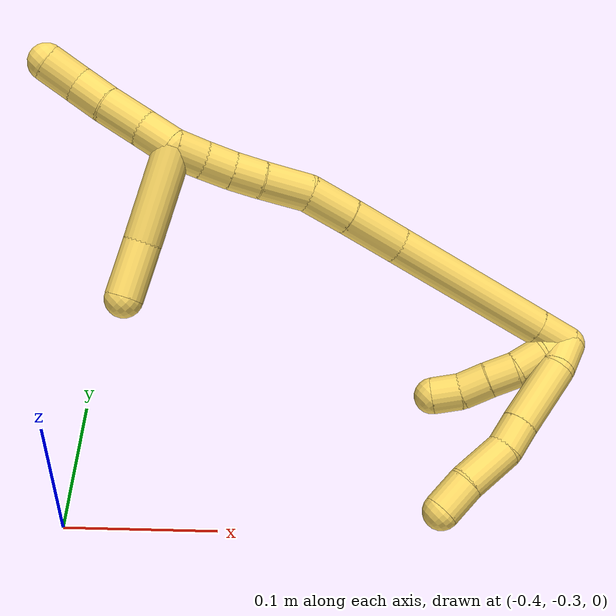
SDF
<sdf version="1.7">
 <world name="default">
  <model name="5">
   <static>0</static>
   <link name="5">
    <collision name="collision-cylinder-e_1_2_8">
     <pose>0.002213 -0.006853 -0.008805 2.48023 0.195799 0.55731</pose>
     <geometry><cylinder><radius>0.0125</radius><length>0.022749</length></cylinder></geometry>
     <surface>
      <friction><ode><mu>1.16</mu><mu2>1.16</mu2><slip1>0</slip1><slip2>0</slip2></ode></friction>
      <contact><ode><kp>1e+06</kp><kd>1</kd><max_vel>0</max_vel><min_depth>0.001</min_depth></ode></contact>
     </surface>
    </collision>
    <visual name="visual-cylinder-e_1_2_8">
     <pose>0.002213 -0.006853 -0.008805 2.48023 0.195799 0.55731</pose>
     <geometry><cylinder><radius>0.0125</radius><length>0.022749</length></cylinder></geometry>
     <material><ambient>1 0.858824 0.4 1</ambient></material>
    </visual>
    <collision name="collision-cylinder-e_2_8_9">
     <pose>0.007707 -0.021106 -0.03972 2.8186 0.139783 0.8117</pose>
     <geometry><cylinder><radius>0.0125</radius><length>0.047092</length></cylinder></geometry>
     <surface>
      <friction><ode><mu>1.16</mu><mu2>1.16</mu2><slip1>0</slip1><slip2>0</slip2></ode></friction>
      <contact><ode><kp>1e+06</kp><kd>1</kd><max_vel>0</max_vel><min_depth>0.001</min_depth></ode></contact>
     </surface>
    </collision>
    <visual name="visual-cylinder-e_2_8_9">
     <pose>0.007707 -0.021106 -0.03972 2.8186 0.139783 0.8117</pose>
     <geometry><cylinder><radius>0.0125</radius><length>0.047092</length></cylinder></geometry>
     <material><ambient>1 0.858824 0.4 1</ambient></material>
    </visual>
    <collision name="collision-cylinder-e_3_9_10">
     <pose>0.012807 -0.031918 -0.071524 2.80321 0.175273 0.950112</pose>
     <geometry><cylinder><radius>0.0125</radius><length>0.020871</length></cylinder></geometry>
     <surface>
      <friction><ode><mu>1.16</mu><mu2>1.16</mu2><slip1>0</slip1><slip2>0</slip2></ode></friction>
      <contact><ode><kp>1e+06</kp><kd>1</kd><max_vel>0</max_vel><min_depth>0.001</min_depth></ode></contact>
     </surface>
    </collision>
    <visual name="visual-cylinder-e_3_9_10">
     <pose>0.012807 -0.031918 -0.071524 2.80321 0.175273 0.950112</pose>
     <geometry><cylinder><radius>0.0125</radius><length>0.020871</length></cylinder></geometry>
     <material><ambient>1 0.858824 0.4 1</ambient></material>
    </visual>
    <collision name="collision-cylinder-e_4_10_11">
     <pose>0.012732 -0.040397 -0.097722 2.84366 -0.109274 -0.698923</pose>
     <geometry><cylinder><radius>0.0125</radius><length>0.034739</length></cylinder></geometry>
     <surface>
      <friction><ode><mu>1.16</mu><mu2>1.16</mu2><slip1>0</slip1><slip2>0</slip2></ode></friction>
      <contact><ode><kp>1e+06</kp><kd>1</kd><max_vel>0</max_vel><min_depth>0.001</min_depth></ode></contact>
     </surface>
    </collision>
    <visual name="visual-cylinder-e_4_10_11">
     <pose>0.012732 -0.040397 -0.097722 2.84366 -0.109274 -0.698923</pose>
     <geometry><cylinder><radius>0.0125</radius><length>0.034739</length></cylinder></geometry>
     <material><ambient>1 0.858824 0.4 1</ambient></material>
    </visual>
    <collision name="collision-cylinder-e_5_11_6">
     <pose>0.011175 -0.04816 -0.126198 2.92024 0.027427 0.245572</pose>
     <geometry><cylinder><radius>0.0125</radius><length>0.024549</length></cylinder></geometry>
     <surface>
      <friction><ode><mu>1.16</mu><mu2>1.16</mu2><slip1>0</slip1><slip2>0</slip2></ode></friction>
      <contact><ode><kp>1e+06</kp><kd>1</kd><max_vel>0</max_vel><min_depth>0.001</min_depth></ode></contact>
     </surface>
    </collision>
    <visual name="visual-cylinder-e_5_11_6">
     <pose>0.011175 -0.04816 -0.126198 2.92024 0.027427 0.245572</pose>
     <geometry><cylinder><radius>0.0125</radius><length>0.024549</length></cylinder></geometry>
     <material><ambient>1 0.858824 0.4 1</ambient></material>
    </visual>
    <collision name="collision-cylinder-e_1_2_12">
     <pose>-0.003931 -0.002653 -0.008804 2.84896 -0.403952 -1.89396</pose>
     <geometry><cylinder><radius>0.0125</radius><length>0.02</length></cylinder></geometry>
     <surface>
      <friction><ode><mu>1.16</mu><mu2>1.16</mu2><slip1>0</slip1><slip2>0</slip2></ode></friction>
      <contact><ode><kp>1e+06</kp><kd>1</kd><max_vel>0</max_vel><min_depth>0.001</min_depth></ode></contact>
     </surface>
    </collision>
    <visual name="visual-cylinder-e_1_2_12">
     <pose>-0.003931 -0.002653 -0.008804 2.84896 -0.403952 -1.89396</pose>
     <geometry><cylinder><radius>0.0125</radius><length>0.02</length></cylinder></geometry>
     <material><ambient>1 0.858824 0.4 1</ambient></material>
    </visual>
    <collision name="collision-cylinder-e_2_12_13">
     <pose>-0.010307 -0.006215 -0.027262 3.0476 -0.247058 -2.41745</pose>
     <geometry><cylinder><radius>0.0125</radius><length>0.02</length></cylinder></geometry>
     <surface>
      <friction><ode><mu>1.16</mu><mu2>1.16</mu2><slip1>0</slip1><slip2>0</slip2></ode></friction>
      <contact><ode><kp>1e+06</kp><kd>1</kd><max_vel>0</max_vel><min_depth>0.001</min_depth></ode></contact>
     </surface>
    </collision>
    <visual name="visual-cylinder-e_2_12_13">
     <pose>-0.010307 -0.006215 -0.027262 3.0476 -0.247058 -2.41745</pose>
     <geometry><cylinder><radius>0.0125</radius><length>0.02</length></cylinder></geometry>
     <material><ambient>1 0.858824 0.4 1</ambient></material>
    </visual>
    <collision name="collision-cylinder-e_3_13_14">
     <pose>-0.016679 -0.006003 -0.046044 -3.0193 -0.403552 2.55997</pose>
     <geometry><cylinder><radius>0.0125</radius><length>0.02</length></cylinder></geometry>
     <surface>
      <friction><ode><mu>1.16</mu><mu2>1.16</mu2><slip1>0</slip1><slip2>0</slip2></ode></friction>
      <contact><ode><kp>1e+06</kp><kd>1</kd><max_vel>0</max_vel><min_depth>0.001</min_depth></ode></contact>
     </surface>
    </collision>
    <visual name="visual-cylinder-e_3_13_14">
     <pose>-0.016679 -0.006003 -0.046044 -3.0193 -0.403552 2.55997</pose>
     <geometry><cylinder><radius>0.0125</radius><length>0.02</length></cylinder></geometry>
     <material><ambient>1 0.858824 0.4 1</ambient></material>
    </visual>
    <collision name="collision-cylinder-e_4_14_15">
     <pose>-0.024023 -0.003277 -0.064432 -2.97006 -0.348737 2.23348</pose>
     <geometry><cylinder><radius>0.0125</radius><length>0.02</length></cylinder></geometry>
     <surface>
      <friction><ode><mu>1.16</mu><mu2>1.16</mu2><slip1>0</slip1><slip2>0</slip2></ode></friction>
      <contact><ode><kp>1e+06</kp><kd>1</kd><max_vel>0</max_vel><min_depth>0.001</min_depth></ode></contact>
     </surface>
    </collision>
    <visual name="visual-cylinder-e_4_14_15">
     <pose>-0.024023 -0.003277 -0.064432 -2.97006 -0.348737 2.23348</pose>
     <geometry><cylinder><radius>0.0125</radius><length>0.02</length></cylinder></geometry>
     <material><ambient>1 0.858824 0.4 1</ambient></material>
    </visual>
    <collision name="collision-cylinder-e_5_15_5">
     <pose>-0.033104 -0.000361 -0.081828 -2.9817 -0.602148 2.63658</pose>
     <geometry><cylinder><radius>0.0125</radius><length>0.02</length></cylinder></geometry>
     <surface>
      <friction><ode><mu>1.16</mu><mu2>1.16</mu2><slip1>0</slip1><slip2>0</slip2></ode></friction>
      <contact><ode><kp>1e+06</kp><kd>1</kd><max_vel>0</max_vel><min_depth>0.001</min_depth></ode></contact>
     </surface>
    </collision>
    <visual name="visual-cylinder-e_5_15_5">
     <pose>-0.033104 -0.000361 -0.081828 -2.9817 -0.602148 2.63658</pose>
     <geometry><cylinder><radius>0.0125</radius><length>0.02</length></cylinder></geometry>
     <material><ambient>1 0.858824 0.4 1</ambient></material>
    </visual>
    <collision name="collision-cylinder-e_1_2_16">
     <pose>-0.01201 -0.002202 -0.003387 2.56503 -1.24631 -2.35892</pose>
     <geometry><cylinder><radius>0.0125</radius><length>0.025343</length></cylinder></geometry>
     <surface>
      <friction><ode><mu>1.16</mu><mu2>1.16</mu2><slip1>0</slip1><slip2>0</slip2></ode></friction>
      <contact><ode><kp>1e+06</kp><kd>1</kd><max_vel>0</max_vel><min_depth>0.001</min_depth></ode></contact>
     </surface>
    </collision>
    <visual name="visual-cylinder-e_1_2_16">
     <pose>-0.01201 -0.002202 -0.003387 2.56503 -1.24631 -2.35892</pose>
     <geometry><cylinder><radius>0.0125</radius><length>0.025343</length></cylinder></geometry>
     <material><ambient>1 0.858824 0.4 1</ambient></material>
    </visual>
    <collision name="collision-cylinder-e_2_16_17">
     <pose>-0.076916 -0.014977 -0.021815 2.52893 -1.23628 -2.30457</pose>
     <geometry><cylinder><radius>0.0125</radius><length>0.112</length></cylinder></geometry>
     <surface>
      <friction><ode><mu>1.16</mu><mu2>1.16</mu2><slip1>0</slip1><slip2>0</slip2></ode></friction>
      <contact><ode><kp>1e+06</kp><kd>1</kd><max_vel>0</max_vel><min_depth>0.001</min_depth></ode></contact>
     </surface>
    </collision>
    <visual name="visual-cylinder-e_2_16_17">
     <pose>-0.076916 -0.014977 -0.021815 2.52893 -1.23628 -2.30457</pose>
     <geometry><cylinder><radius>0.0125</radius><length>0.112</length></cylinder></geometry>
     <material><ambient>1 0.858824 0.4 1</ambient></material>
    </visual>
    <collision name="collision-cylinder-e_3_17_18">
     <pose>-0.147775 -0.03058 -0.042055 2.3727 -1.18796 -2.06211</pose>
     <geometry><cylinder><radius>0.0125</radius><length>0.03873</length></cylinder></geometry>
     <surface>
      <friction><ode><mu>1.16</mu><mu2>1.16</mu2><slip1>0</slip1><slip2>0</slip2></ode></friction>
      <contact><ode><kp>1e+06</kp><kd>1</kd><max_vel>0</max_vel><min_depth>0.001</min_depth></ode></contact>
     </surface>
    </collision>
    <visual name="visual-cylinder-e_3_17_18">
     <pose>-0.147775 -0.03058 -0.042055 2.3727 -1.18796 -2.06211</pose>
     <geometry><cylinder><radius>0.0125</radius><length>0.03873</length></cylinder></geometry>
     <material><ambient>1 0.858824 0.4 1</ambient></material>
    </visual>
    <collision name="collision-cylinder-e_4_18_19">
     <pose>-0.180456 -0.039085 -0.05172 2.4803 -1.20372 -2.21474</pose>
     <geometry><cylinder><radius>0.0125</radius><length>0.031537</length></cylinder></geometry>
     <surface>
      <friction><ode><mu>1.16</mu><mu2>1.16</mu2><slip1>0</slip1><slip2>0</slip2></ode></friction>
      <contact><ode><kp>1e+06</kp><kd>1</kd><max_vel>0</max_vel><min_depth>0.001</min_depth></ode></contact>
     </surface>
    </collision>
    <visual name="visual-cylinder-e_4_18_19">
     <pose>-0.180456 -0.039085 -0.05172 2.4803 -1.20372 -2.21474</pose>
     <geometry><cylinder><radius>0.0125</radius><length>0.031537</length></cylinder></geometry>
     <material><ambient>1 0.858824 0.4 1</ambient></material>
    </visual>
    <collision name="collision-cylinder-e_5_19_20">
     <pose>-0.208263 -0.046663 -0.064078 2.66218 -0.973956 -2.27673</pose>
     <geometry><cylinder><radius>0.0125</radius><length>0.03165</length></cylinder></geometry>
     <surface>
      <friction><ode><mu>1.16</mu><mu2>1.16</mu2><slip1>0</slip1><slip2>0</slip2></ode></friction>
      <contact><ode><kp>1e+06</kp><kd>1</kd><max_vel>0</max_vel><min_depth>0.001</min_depth></ode></contact>
     </surface>
    </collision>
    <visual name="visual-cylinder-e_5_19_20">
     <pose>-0.208263 -0.046663 -0.064078 2.66218 -0.973956 -2.27673</pose>
     <geometry><cylinder><radius>0.0125</radius><length>0.03165</length></cylinder></geometry>
     <material><ambient>1 0.858824 0.4 1</ambient></material>
    </visual>
    <collision name="collision-cylinder-e_6_20_21">
     <pose>-0.230041 -0.052654 -0.076808 2.76948 -1.03201 -2.5008</pose>
     <geometry><cylinder><radius>0.0125</radius><length>0.020245</length></cylinder></geometry>
     <surface>
      <friction><ode><mu>1.16</mu><mu2>1.16</mu2><slip1>0</slip1><slip2>0</slip2></ode></friction>
      <contact><ode><kp>1e+06</kp><kd>1</kd><max_vel>0</max_vel><min_depth>0.001</min_depth></ode></contact>
     </surface>
    </collision>
    <visual name="visual-cylinder-e_6_20_21">
     <pose>-0.230041 -0.052654 -0.076808 2.76948 -1.03201 -2.5008</pose>
     <geometry><cylinder><radius>0.0125</radius><length>0.020245</length></cylinder></geometry>
     <material><ambient>1 0.858824 0.4 1</ambient></material>
    </visual>
    <collision name="collision-cylinder-e_7_21_22">
     <pose>-0.247517 -0.056761 -0.085873 2.65819 -1.0732 -2.3558</pose>
     <geometry><cylinder><radius>0.0125</radius><length>0.020002</length></cylinder></geometry>
     <surface>
      <friction><ode><mu>1.16</mu><mu2>1.16</mu2><slip1>0</slip1><slip2>0</slip2></ode></friction>
      <contact><ode><kp>1e+06</kp><kd>1</kd><max_vel>0</max_vel><min_depth>0.001</min_depth></ode></contact>
     </surface>
    </collision>
    <visual name="visual-cylinder-e_7_21_22">
     <pose>-0.247517 -0.056761 -0.085873 2.65819 -1.0732 -2.3558</pose>
     <geometry><cylinder><radius>0.0125</radius><length>0.020002</length></cylinder></geometry>
     <material><ambient>1 0.858824 0.4 1</ambient></material>
    </visual>
    <collision name="collision-cylinder-e_8_22_1">
     <pose>-0.265108 -0.062383 -0.094091 2.43559 -1.0334 -1.99104</pose>
     <geometry><cylinder><radius>0.0125</radius><length>0.020494</length></cylinder></geometry>
     <surface>
      <friction><ode><mu>1.16</mu><mu2>1.16</mu2><slip1>0</slip1><slip2>0</slip2></ode></friction>
      <contact><ode><kp>1e+06</kp><kd>1</kd><max_vel>0</max_vel><min_depth>0.001</min_depth></ode></contact>
     </surface>
    </collision>
    <visual name="visual-cylinder-e_8_22_1">
     <pose>-0.265108 -0.062383 -0.094091 2.43559 -1.0334 -1.99104</pose>
     <geometry><cylinder><radius>0.0125</radius><length>0.020494</length></cylinder></geometry>
     <material><ambient>1 0.858824 0.4 1</ambient></material>
    </visual>
    <collision name="collision-cylinder-e_1_1_23">
     <pose>-0.259272 -0.065395 -0.126046 -3.12761 0.482204 -3.08475</pose>
     <geometry><cylinder><radius>0.0125</radius><length>0.063132</length></cylinder></geometry>
     <surface>
      <friction><ode><mu>1.16</mu><mu2>1.16</mu2><slip1>0</slip1><slip2>0</slip2></ode></friction>
      <contact><ode><kp>1e+06</kp><kd>1</kd><max_vel>0</max_vel><min_depth>0.001</min_depth></ode></contact>
     </surface>
    </collision>
    <visual name="visual-cylinder-e_1_1_23">
     <pose>-0.259272 -0.065395 -0.126046 -3.12761 0.482204 -3.08475</pose>
     <geometry><cylinder><radius>0.0125</radius><length>0.063132</length></cylinder></geometry>
     <material><ambient>1 0.858824 0.4 1</ambient></material>
    </visual>
    <collision name="collision-cylinder-e_2_23_4">
     <pose>-0.236049 -0.067571 -0.17012 2.98359 0.484457 2.52146</pose>
     <geometry><cylinder><radius>0.0125</radius><length>0.036868</length></cylinder></geometry>
     <surface>
      <friction><ode><mu>1.16</mu><mu2>1.16</mu2><slip1>0</slip1><slip2>0</slip2></ode></friction>
      <contact><ode><kp>1e+06</kp><kd>1</kd><max_vel>0</max_vel><min_depth>0.001</min_depth></ode></contact>
     </surface>
    </collision>
    <visual name="visual-cylinder-e_2_23_4">
     <pose>-0.236049 -0.067571 -0.17012 2.98359 0.484457 2.52146</pose>
     <geometry><cylinder><radius>0.0125</radius><length>0.036868</length></cylinder></geometry>
     <material><ambient>1 0.858824 0.4 1</ambient></material>
    </visual>
    <collision name="collision-cylinder-e_1_1_24">
     <pose>-0.284866 -0.062964 -0.100493 -2.27778 -1.24411 1.99894</pose>
     <geometry><cylinder><radius>0.0125</radius><length>0.023134</length></cylinder></geometry>
     <surface>
      <friction><ode><mu>1.16</mu><mu2>1.16</mu2><slip1>0</slip1><slip2>0</slip2></ode></friction>
      <contact><ode><kp>1e+06</kp><kd>1</kd><max_vel>0</max_vel><min_depth>0.001</min_depth></ode></contact>
     </surface>
    </collision>
    <visual name="visual-cylinder-e_1_1_24">
     <pose>-0.284866 -0.062964 -0.100493 -2.27778 -1.24411 1.99894</pose>
     <geometry><cylinder><radius>0.0125</radius><length>0.023134</length></cylinder></geometry>
     <material><ambient>1 0.858824 0.4 1</ambient></material>
    </visual>
    <collision name="collision-cylinder-e_2_24_25">
     <pose>-0.309759 -0.058227 -0.106089 -2.60031 -1.31025 2.44852</pose>
     <geometry><cylinder><radius>0.0125</radius><length>0.028849</length></cylinder></geometry>
     <surface>
      <friction><ode><mu>1.16</mu><mu2>1.16</mu2><slip1>0</slip1><slip2>0</slip2></ode></friction>
      <contact><ode><kp>1e+06</kp><kd>1</kd><max_vel>0</max_vel><min_depth>0.001</min_depth></ode></contact>
     </surface>
    </collision>
    <visual name="visual-cylinder-e_2_24_25">
     <pose>-0.309759 -0.058227 -0.106089 -2.60031 -1.31025 2.44852</pose>
     <geometry><cylinder><radius>0.0125</radius><length>0.028849</length></cylinder></geometry>
     <material><ambient>1 0.858824 0.4 1</ambient></material>
    </visual>
    <collision name="collision-cylinder-e_3_25_26">
     <pose>-0.334896 -0.053754 -0.111294 -2.23913 -1.28754 1.99485</pose>
     <geometry><cylinder><radius>0.0125</radius><length>0.023327</length></cylinder></geometry>
     <surface>
      <friction><ode><mu>1.16</mu><mu2>1.16</mu2><slip1>0</slip1><slip2>0</slip2></ode></friction>
      <contact><ode><kp>1e+06</kp><kd>1</kd><max_vel>0</max_vel><min_depth>0.001</min_depth></ode></contact>
     </surface>
    </collision>
    <visual name="visual-cylinder-e_3_25_26">
     <pose>-0.334896 -0.053754 -0.111294 -2.23913 -1.28754 1.99485</pose>
     <geometry><cylinder><radius>0.0125</radius><length>0.023327</length></cylinder></geometry>
     <material><ambient>1 0.858824 0.4 1</ambient></material>
    </visual>
    <collision name="collision-cylinder-e_4_26_3">
     <pose>-0.358192 -0.052291 -0.115512 2.67926 -1.37052 -2.58085</pose>
     <geometry><cylinder><radius>0.0125</radius><length>0.024689</length></cylinder></geometry>
     <surface>
      <friction><ode><mu>1.16</mu><mu2>1.16</mu2><slip1>0</slip1><slip2>0</slip2></ode></friction>
      <contact><ode><kp>1e+06</kp><kd>1</kd><max_vel>0</max_vel><min_depth>0.001</min_depth></ode></contact>
     </surface>
    </collision>
    <visual name="visual-cylinder-e_4_26_3">
     <pose>-0.358192 -0.052291 -0.115512 2.67926 -1.37052 -2.58085</pose>
     <geometry><cylinder><radius>0.0125</radius><length>0.024689</length></cylinder></geometry>
     <material><ambient>1 0.858824 0.4 1</ambient></material>
    </visual>
    <collision name="collision-sphere-3">
     <pose>-0.37029 -0.053387 -0.11771 0 -0 0</pose>
     <geometry><sphere><radius>0.0125</radius></sphere></geometry>
     <surface>
      <friction><ode><mu>1.16</mu><mu2>1.16</mu2><slip1>0</slip1><slip2>0</slip2></ode></friction>
      <contact><ode><kp>1e+06</kp><kd>1</kd><max_vel>0</max_vel><min_depth>0.001</min_depth></ode></contact>
     </surface>
    </collision>
    <visual name="visual-sphere-3">
     <pose>-0.37029 -0.053387 -0.11771 0 -0 0</pose>
     <geometry><sphere><radius>0.0125</radius></sphere></geometry>
     <material><ambient>1 0.858824 0.4 1</ambient></material>
    </visual>
    <collision name="collision-sphere-26">
     <pose>-0.346095 -0.051196 -0.113314 0 -0 0</pose>
     <geometry><sphere><radius>0.0125</radius></sphere></geometry>
     <surface>
      <friction><ode><mu>1.16</mu><mu2>1.16</mu2><slip1>0</slip1><slip2>0</slip2></ode></friction>
      <contact><ode><kp>1e+06</kp><kd>1</kd><max_vel>0</max_vel><min_depth>0.001</min_depth></ode></contact>
     </surface>
    </collision>
    <visual name="visual-sphere-26">
     <pose>-0.346095 -0.051196 -0.113314 0 -0 0</pose>
     <geometry><sphere><radius>0.0125</radius></sphere></geometry>
     <material><ambient>1 0.858824 0.4 1</ambient></material>
    </visual>
    <collision name="collision-sphere-25">
     <pose>-0.323697 -0.056313 -0.109274 0 -0 0</pose>
     <geometry><sphere><radius>0.0125</radius></sphere></geometry>
     <surface>
      <friction><ode><mu>1.16</mu><mu2>1.16</mu2><slip1>0</slip1><slip2>0</slip2></ode></friction>
      <contact><ode><kp>1e+06</kp><kd>1</kd><max_vel>0</max_vel><min_depth>0.001</min_depth></ode></contact>
     </surface>
    </collision>
    <visual name="visual-sphere-25">
     <pose>-0.323697 -0.056313 -0.109274 0 -0 0</pose>
     <geometry><sphere><radius>0.0125</radius></sphere></geometry>
     <material><ambient>1 0.858824 0.4 1</ambient></material>
    </visual>
    <collision name="collision-sphere-24">
     <pose>-0.295821 -0.060142 -0.102904 0 -0 0</pose>
     <geometry><sphere><radius>0.0125</radius></sphere></geometry>
     <surface>
      <friction><ode><mu>1.16</mu><mu2>1.16</mu2><slip1>0</slip1><slip2>0</slip2></ode></friction>
      <contact><ode><kp>1e+06</kp><kd>1</kd><max_vel>0</max_vel><min_depth>0.001</min_depth></ode></contact>
     </surface>
    </collision>
    <visual name="visual-sphere-24">
     <pose>-0.295821 -0.060142 -0.102904 0 -0 0</pose>
     <geometry><sphere><radius>0.0125</radius></sphere></geometry>
     <material><ambient>1 0.858824 0.4 1</ambient></material>
    </visual>
    <collision name="collision-sphere-4">
     <pose>-0.227464 -0.070138 -0.186229 0 -0 0</pose>
     <geometry><sphere><radius>0.0125</radius></sphere></geometry>
     <surface>
      <friction><ode><mu>1.16</mu><mu2>1.16</mu2><slip1>0</slip1><slip2>0</slip2></ode></friction>
      <contact><ode><kp>1e+06</kp><kd>1</kd><max_vel>0</max_vel><min_depth>0.001</min_depth></ode></contact>
     </surface>
    </collision>
    <visual name="visual-sphere-4">
     <pose>-0.227464 -0.070138 -0.186229 0 -0 0</pose>
     <geometry><sphere><radius>0.0125</radius></sphere></geometry>
     <material><ambient>1 0.858824 0.4 1</ambient></material>
    </visual>
    <collision name="collision-sphere-23">
     <pose>-0.244634 -0.065004 -0.15401 0 -0 0</pose>
     <geometry><sphere><radius>0.0125</radius></sphere></geometry>
     <surface>
      <friction><ode><mu>1.16</mu><mu2>1.16</mu2><slip1>0</slip1><slip2>0</slip2></ode></friction>
      <contact><ode><kp>1e+06</kp><kd>1</kd><max_vel>0</max_vel><min_depth>0.001</min_depth></ode></contact>
     </surface>
    </collision>
    <visual name="visual-sphere-23">
     <pose>-0.244634 -0.065004 -0.15401 0 -0 0</pose>
     <geometry><sphere><radius>0.0125</radius></sphere></geometry>
     <material><ambient>1 0.858824 0.4 1</ambient></material>
    </visual>
    <collision name="collision-sphere-1">
     <pose>-0.273911 -0.065786 -0.098082 0 -0 0</pose>
     <geometry><sphere><radius>0.0125</radius></sphere></geometry>
     <surface>
      <friction><ode><mu>1.16</mu><mu2>1.16</mu2><slip1>0</slip1><slip2>0</slip2></ode></friction>
      <contact><ode><kp>1e+06</kp><kd>1</kd><max_vel>0</max_vel><min_depth>0.001</min_depth></ode></contact>
     </surface>
    </collision>
    <visual name="visual-sphere-1">
     <pose>-0.273911 -0.065786 -0.098082 0 -0 0</pose>
     <geometry><sphere><radius>0.0125</radius></sphere></geometry>
     <material><ambient>1 0.858824 0.4 1</ambient></material>
    </visual>
    <collision name="collision-sphere-22">
     <pose>-0.256305 -0.05898 -0.090099 0 -0 0</pose>
     <geometry><sphere><radius>0.0125</radius></sphere></geometry>
     <surface>
      <friction><ode><mu>1.16</mu><mu2>1.16</mu2><slip1>0</slip1><slip2>0</slip2></ode></friction>
      <contact><ode><kp>1e+06</kp><kd>1</kd><max_vel>0</max_vel><min_depth>0.001</min_depth></ode></contact>
     </surface>
    </collision>
    <visual name="visual-sphere-22">
     <pose>-0.256305 -0.05898 -0.090099 0 -0 0</pose>
     <geometry><sphere><radius>0.0125</radius></sphere></geometry>
     <material><ambient>1 0.858824 0.4 1</ambient></material>
    </visual>
    <collision name="collision-sphere-21">
     <pose>-0.238729 -0.054542 -0.081646 0 -0 0</pose>
     <geometry><sphere><radius>0.0125</radius></sphere></geometry>
     <surface>
      <friction><ode><mu>1.16</mu><mu2>1.16</mu2><slip1>0</slip1><slip2>0</slip2></ode></friction>
      <contact><ode><kp>1e+06</kp><kd>1</kd><max_vel>0</max_vel><min_depth>0.001</min_depth></ode></contact>
     </surface>
    </collision>
    <visual name="visual-sphere-21">
     <pose>-0.238729 -0.054542 -0.081646 0 -0 0</pose>
     <geometry><sphere><radius>0.0125</radius></sphere></geometry>
     <material><ambient>1 0.858824 0.4 1</ambient></material>
    </visual>
    <collision name="collision-sphere-6">
     <pose>0.011511 -0.050853 -0.138168 0 -0 0</pose>
     <geometry><sphere><radius>0.0125</radius></sphere></geometry>
     <surface>
      <friction><ode><mu>1.16</mu><mu2>1.16</mu2><slip1>0</slip1><slip2>0</slip2></ode></friction>
      <contact><ode><kp>1e+06</kp><kd>1</kd><max_vel>0</max_vel><min_depth>0.001</min_depth></ode></contact>
     </surface>
    </collision>
    <visual name="visual-sphere-6">
     <pose>0.011511 -0.050853 -0.138168 0 -0 0</pose>
     <geometry><sphere><radius>0.0125</radius></sphere></geometry>
     <material><ambient>1 0.858824 0.4 1</ambient></material>
    </visual>
    <collision name="collision-sphere-11">
     <pose>0.010838 -0.045466 -0.114227 0 -0 0</pose>
     <geometry><sphere><radius>0.0125</radius></sphere></geometry>
     <surface>
      <friction><ode><mu>1.16</mu><mu2>1.16</mu2><slip1>0</slip1><slip2>0</slip2></ode></friction>
      <contact><ode><kp>1e+06</kp><kd>1</kd><max_vel>0</max_vel><min_depth>0.001</min_depth></ode></contact>
     </surface>
    </collision>
    <visual name="visual-sphere-11">
     <pose>0.010838 -0.045466 -0.114227 0 -0 0</pose>
     <geometry><sphere><radius>0.0125</radius></sphere></geometry>
     <material><ambient>1 0.858824 0.4 1</ambient></material>
    </visual>
    <collision name="collision-sphere-10">
     <pose>0.014627 -0.035329 -0.081217 0 -0 0</pose>
     <geometry><sphere><radius>0.0125</radius></sphere></geometry>
     <surface>
      <friction><ode><mu>1.16</mu><mu2>1.16</mu2><slip1>0</slip1><slip2>0</slip2></ode></friction>
      <contact><ode><kp>1e+06</kp><kd>1</kd><max_vel>0</max_vel><min_depth>0.001</min_depth></ode></contact>
     </surface>
    </collision>
    <visual name="visual-sphere-10">
     <pose>0.014627 -0.035329 -0.081217 0 -0 0</pose>
     <geometry><sphere><radius>0.0125</radius></sphere></geometry>
     <material><ambient>1 0.858824 0.4 1</ambient></material>
    </visual>
    <collision name="collision-sphere-9">
     <pose>0.010987 -0.028507 -0.061831 0 -0 0</pose>
     <geometry><sphere><radius>0.0125</radius></sphere></geometry>
     <surface>
      <friction><ode><mu>1.16</mu><mu2>1.16</mu2><slip1>0</slip1><slip2>0</slip2></ode></friction>
      <contact><ode><kp>1e+06</kp><kd>1</kd><max_vel>0</max_vel><min_depth>0.001</min_depth></ode></contact>
     </surface>
    </collision>
    <visual name="visual-sphere-9">
     <pose>0.010987 -0.028507 -0.061831 0 -0 0</pose>
     <geometry><sphere><radius>0.0125</radius></sphere></geometry>
     <material><ambient>1 0.858824 0.4 1</ambient></material>
    </visual>
    <collision name="collision-sphere-2">
     <geometry><sphere><radius>0.0125</radius></sphere></geometry>
     <surface>
      <friction><ode><mu>1.16</mu><mu2>1.16</mu2><slip1>0</slip1><slip2>0</slip2></ode></friction>
      <contact><ode><kp>1e+06</kp><kd>1</kd><max_vel>0</max_vel><min_depth>0.001</min_depth></ode></contact>
     </surface>
    </collision>
    <visual name="visual-sphere-2">
     <geometry><sphere><radius>0.0125</radius></sphere></geometry>
     <material><ambient>1 0.858824 0.4 1</ambient></material>
    </visual>
    <collision name="collision-sphere-19">
     <pose>-0.195174 -0.042561 -0.056187 0 -0 0</pose>
     <geometry><sphere><radius>0.0125</radius></sphere></geometry>
     <surface>
      <friction><ode><mu>1.16</mu><mu2>1.16</mu2><slip1>0</slip1><slip2>0</slip2></ode></friction>
      <contact><ode><kp>1e+06</kp><kd>1</kd><max_vel>0</max_vel><min_depth>0.001</min_depth></ode></contact>
     </surface>
    </collision>
    <visual name="visual-sphere-19">
     <pose>-0.195174 -0.042561 -0.056187 0 -0 0</pose>
     <geometry><sphere><radius>0.0125</radius></sphere></geometry>
     <material><ambient>1 0.858824 0.4 1</ambient></material>
    </visual>
    <collision name="collision-sphere-8">
     <pose>0.004426 -0.013705 -0.01761 0 -0 0</pose>
     <geometry><sphere><radius>0.0125</radius></sphere></geometry>
     <surface>
      <friction><ode><mu>1.16</mu><mu2>1.16</mu2><slip1>0</slip1><slip2>0</slip2></ode></friction>
      <contact><ode><kp>1e+06</kp><kd>1</kd><max_vel>0</max_vel><min_depth>0.001</min_depth></ode></contact>
     </surface>
    </collision>
    <visual name="visual-sphere-8">
     <pose>0.004426 -0.013705 -0.01761 0 -0 0</pose>
     <geometry><sphere><radius>0.0125</radius></sphere></geometry>
     <material><ambient>1 0.858824 0.4 1</ambient></material>
    </visual>
    <collision name="collision-sphere-12">
     <pose>-0.007861 -0.005305 -0.017609 0 -0 0</pose>
     <geometry><sphere><radius>0.0125</radius></sphere></geometry>
     <surface>
      <friction><ode><mu>1.16</mu><mu2>1.16</mu2><slip1>0</slip1><slip2>0</slip2></ode></friction>
      <contact><ode><kp>1e+06</kp><kd>1</kd><max_vel>0</max_vel><min_depth>0.001</min_depth></ode></contact>
     </surface>
    </collision>
    <visual name="visual-sphere-12">
     <pose>-0.007861 -0.005305 -0.017609 0 -0 0</pose>
     <geometry><sphere><radius>0.0125</radius></sphere></geometry>
     <material><ambient>1 0.858824 0.4 1</ambient></material>
    </visual>
    <collision name="collision-sphere-13">
     <pose>-0.012752 -0.007125 -0.036916 0 -0 0</pose>
     <geometry><sphere><radius>0.0125</radius></sphere></geometry>
     <surface>
      <friction><ode><mu>1.16</mu><mu2>1.16</mu2><slip1>0</slip1><slip2>0</slip2></ode></friction>
      <contact><ode><kp>1e+06</kp><kd>1</kd><max_vel>0</max_vel><min_depth>0.001</min_depth></ode></contact>
     </surface>
    </collision>
    <visual name="visual-sphere-13">
     <pose>-0.012752 -0.007125 -0.036916 0 -0 0</pose>
     <geometry><sphere><radius>0.0125</radius></sphere></geometry>
     <material><ambient>1 0.858824 0.4 1</ambient></material>
    </visual>
    <collision name="collision-sphere-14">
     <pose>-0.020606 -0.004881 -0.055172 0 -0 0</pose>
     <geometry><sphere><radius>0.0125</radius></sphere></geometry>
     <surface>
      <friction><ode><mu>1.16</mu><mu2>1.16</mu2><slip1>0</slip1><slip2>0</slip2></ode></friction>
      <contact><ode><kp>1e+06</kp><kd>1</kd><max_vel>0</max_vel><min_depth>0.001</min_depth></ode></contact>
     </surface>
    </collision>
    <visual name="visual-sphere-14">
     <pose>-0.020606 -0.004881 -0.055172 0 -0 0</pose>
     <geometry><sphere><radius>0.0125</radius></sphere></geometry>
     <material><ambient>1 0.858824 0.4 1</ambient></material>
    </visual>
    <collision name="collision-sphere-15">
     <pose>-0.02744 -0.001673 -0.073692 0 -0 0</pose>
     <geometry><sphere><radius>0.0125</radius></sphere></geometry>
     <surface>
      <friction><ode><mu>1.16</mu><mu2>1.16</mu2><slip1>0</slip1><slip2>0</slip2></ode></friction>
      <contact><ode><kp>1e+06</kp><kd>1</kd><max_vel>0</max_vel><min_depth>0.001</min_depth></ode></contact>
     </surface>
    </collision>
    <visual name="visual-sphere-15">
     <pose>-0.02744 -0.001673 -0.073692 0 -0 0</pose>
     <geometry><sphere><radius>0.0125</radius></sphere></geometry>
     <material><ambient>1 0.858824 0.4 1</ambient></material>
    </visual>
    <collision name="collision-sphere-5">
     <pose>-0.038768 0.000951 -0.089964 0 -0 0</pose>
     <geometry><sphere><radius>0.0125</radius></sphere></geometry>
     <surface>
      <friction><ode><mu>1.16</mu><mu2>1.16</mu2><slip1>0</slip1><slip2>0</slip2></ode></friction>
      <contact><ode><kp>1e+06</kp><kd>1</kd><max_vel>0</max_vel><min_depth>0.001</min_depth></ode></contact>
     </surface>
    </collision>
    <visual name="visual-sphere-5">
     <pose>-0.038768 0.000951 -0.089964 0 -0 0</pose>
     <geometry><sphere><radius>0.0125</radius></sphere></geometry>
     <material><ambient>1 0.858824 0.4 1</ambient></material>
    </visual>
    <collision name="collision-sphere-16">
     <pose>-0.02402 -0.004405 -0.006774 0 -0 0</pose>
     <geometry><sphere><radius>0.0125</radius></sphere></geometry>
     <surface>
      <friction><ode><mu>1.16</mu><mu2>1.16</mu2><slip1>0</slip1><slip2>0</slip2></ode></friction>
      <contact><ode><kp>1e+06</kp><kd>1</kd><max_vel>0</max_vel><min_depth>0.001</min_depth></ode></contact>
     </surface>
    </collision>
    <visual name="visual-sphere-16">
     <pose>-0.02402 -0.004405 -0.006774 0 -0 0</pose>
     <geometry><sphere><radius>0.0125</radius></sphere></geometry>
     <material><ambient>1 0.858824 0.4 1</ambient></material>
    </visual>
    <collision name="collision-sphere-17">
     <pose>-0.129812 -0.02555 -0.036857 0 -0 0</pose>
     <geometry><sphere><radius>0.0125</radius></sphere></geometry>
     <surface>
      <friction><ode><mu>1.16</mu><mu2>1.16</mu2><slip1>0</slip1><slip2>0</slip2></ode></friction>
      <contact><ode><kp>1e+06</kp><kd>1</kd><max_vel>0</max_vel><min_depth>0.001</min_depth></ode></contact>
     </surface>
    </collision>
    <visual name="visual-sphere-17">
     <pose>-0.129812 -0.02555 -0.036857 0 -0 0</pose>
     <geometry><sphere><radius>0.0125</radius></sphere></geometry>
     <material><ambient>1 0.858824 0.4 1</ambient></material>
    </visual>
    <collision name="collision-sphere-18">
     <pose>-0.165738 -0.03561 -0.047254 0 -0 0</pose>
     <geometry><sphere><radius>0.0125</radius></sphere></geometry>
     <surface>
      <friction><ode><mu>1.16</mu><mu2>1.16</mu2><slip1>0</slip1><slip2>0</slip2></ode></friction>
      <contact><ode><kp>1e+06</kp><kd>1</kd><max_vel>0</max_vel><min_depth>0.001</min_depth></ode></contact>
     </surface>
    </collision>
    <visual name="visual-sphere-18">
     <pose>-0.165738 -0.03561 -0.047254 0 -0 0</pose>
     <geometry><sphere><radius>0.0125</radius></sphere></geometry>
     <material><ambient>1 0.858824 0.4 1</ambient></material>
    </visual>
    <collision name="collision-sphere-20">
     <pose>-0.221352 -0.050766 -0.071969 0 -0 0</pose>
     <geometry><sphere><radius>0.0125</radius></sphere></geometry>
     <surface>
      <friction><ode><mu>1.16</mu><mu2>1.16</mu2><slip1>0</slip1><slip2>0</slip2></ode></friction>
      <contact><ode><kp>1e+06</kp><kd>1</kd><max_vel>0</max_vel><min_depth>0.001</min_depth></ode></contact>
     </surface>
    </collision>
    <visual name="visual-sphere-20">
     <pose>-0.221352 -0.050766 -0.071969 0 -0 0</pose>
     <geometry><sphere><radius>0.0125</radius></sphere></geometry>
     <material><ambient>1 0.858824 0.4 1</ambient></material>
    </visual>
    <inertial>
     <pose>-0.132777 -0.034906 -0.070273 0 -0 0</pose>
     <mass>0.75</mass>
     <inertia>
      <ixx>-0.000101</ixx>
      <ixy>0</ixy>
      <ixz>0</ixz>
      <iyy>0.000128</iyy>
      <iyz>0</iyz>
      <izz>0.00013</izz>
     </inertia>
    </inertial>
   </link>
   <pose>-0.069543 -0.175183 0.050674 -0.956253 0.547567 -0.582127</pose>
  </model>
 </world>
</sdf>
